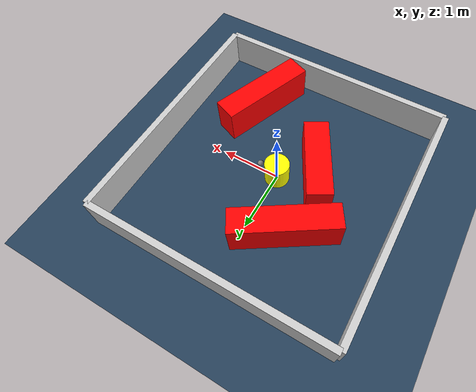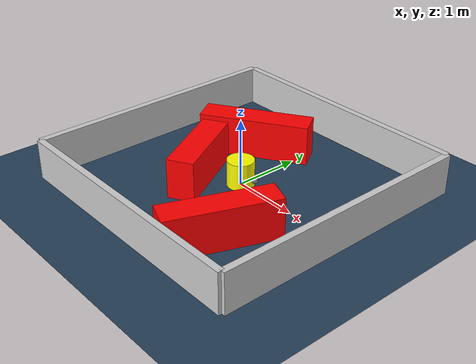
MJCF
<?xml version="1.0" ?>
<mujoco model="generated_environment">
  <option timestep="0.01" integrator="RK4" cone="elliptic"/>
  <default>
    <geom density="1"/>
  </default>
  <asset>
    <texture builtin="gradient" height="3072" rgb1="0.3 0.5 0.7" rgb2="0 0 0" type="skybox" width="512"/>
    <texture builtin="checker" height="300" mark="edge" markrgb="0.8 0.8 0.8" name="groundplane" rgb1="0.2 0.3 0.4" rgb2="0.1 0.2 0.3" type="2d" width="300"/>
    <material name="groundplane" reflectance="0.2" texrepeat="5 5" texture="groundplane" texuniform="true"/>
    <material name="robot" rgba="0.0 1.0 0.0 1"/>
  </asset>
  <worldbody>
    <light dir="0 0 -1" directional="true" pos="0 0 1.5"/>
    <geom condim="4" friction="1.0 0.005 0.001" material="groundplane" name="floor" size="0 0 0.05" type="plane"/>
    <body name="walls">
      <geom name="wall_1" condim="4" pos="-2.0 0.0 0.3" rgba="0.800000011920929 0.800000011920929 0.800000011920929 1.0" size="0.05 2.0 0.3" type="box"/>
      <geom name="wall_2" condim="4" pos="2.0 0.0 0.3" rgba="0.800000011920929 0.800000011920929 0.800000011920929 1.0" size="0.05 2.0 0.3" type="box"/>
      <geom name="wall_3" condim="4" pos="0.0 -2.0 0.3" rgba="0.800000011920929 0.800000011920929 0.800000011920929 1.0" size="2.0 0.05 0.3" type="box"/>
      <geom name="wall_4" condim="4" pos="0.0 2.0 0.3" rgba="0.800000011920929 0.800000011920929 0.800000011920929 1.0" size="2.0 0.05 0.3" type="box"/>
    </body>
    <body name="robot">
      <joint name="joint_x" type="slide" pos="0 0 0" axis="1 0 0"/>
      <joint name="joint_y" type="slide" pos="0 0 0" axis="0 1 0"/>
      <geom name="robot" type="sphere" pos="0.3 0.0 0.2" size="0.05" mass="5." friction="1.0 0.005 0.0001" condim="4" rgba="0.5 0.5 0.5 1.0"/>
      <site name="sensor_ball"/>
    </body>
    <body name="obstacle_movable_1">
      <geom name="obstacle_movable_1" condim="4" pos="0.0 0.0 0.2" euler="0 0 0.0" friction="1.0 0.005 0.001" rgba="1.0 1.0 0.0 1.0" size="0.2 0.2 0.0" type="cylinder" mass="0.1"/>
      <joint type="free"/>
    </body>
    <body name="obstacle_2_static">
      <geom name="obstacle_2_static" condim="4" pos="0.9131914481811931 -1.1267634931062376 0.3" euler="0 0 68.77756206203244" friction="1.0 0.005 0.001" rgba="1 0 0 1" size="0.8022932777744123 0.2 0.3" type="box"/>
    </body>
    <body name="obstacle_3_static">
      <geom name="obstacle_3_static" condim="4" pos="-0.5889635357087201 0.8194055682058192 0.3" euler="0 0 212.1388483601985" friction="1.0 0.005 0.001" rgba="1 0 0 1" size="0.8258267994731172 0.2 0.3" type="box"/>
    </body>
    <body name="obstacle_4_static">
      <geom name="obstacle_4_static" condim="4" pos="-0.5357692487185375 -0.3252013192278953 0.3" euler="0 0 119.05546965981446" friction="1.0 0.005 0.001" rgba="1 0 0 1" size="0.65805110081709 0.2 0.3" type="box"/>
    </body>
  </worldbody>
  <actuator>
    <motor name="actuator_x" joint="joint_x" gear="1" ctrlrange="-1 1"/>
    <motor name="actuator_y" joint="joint_y" gear="1" ctrlrange="-1 1"/>
  </actuator>
</mujoco>
